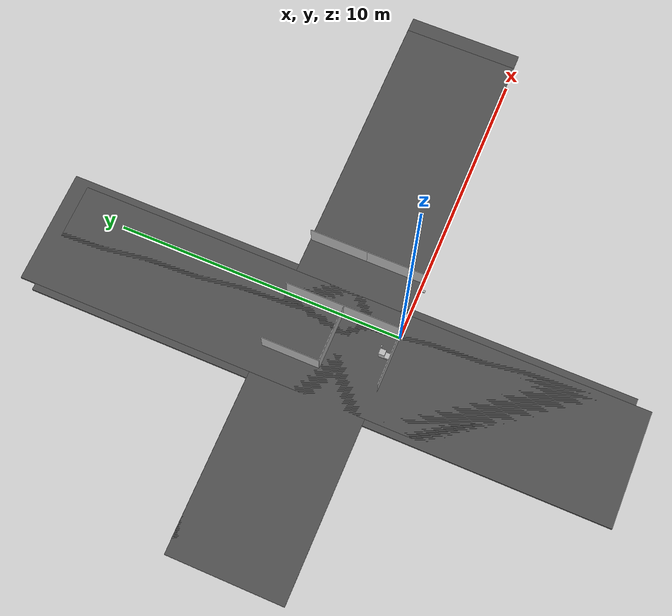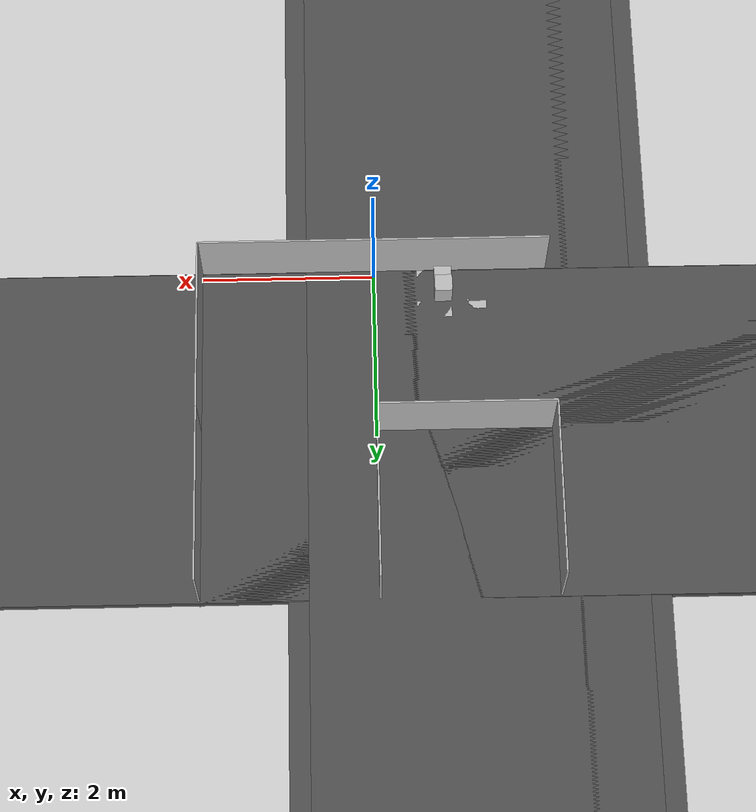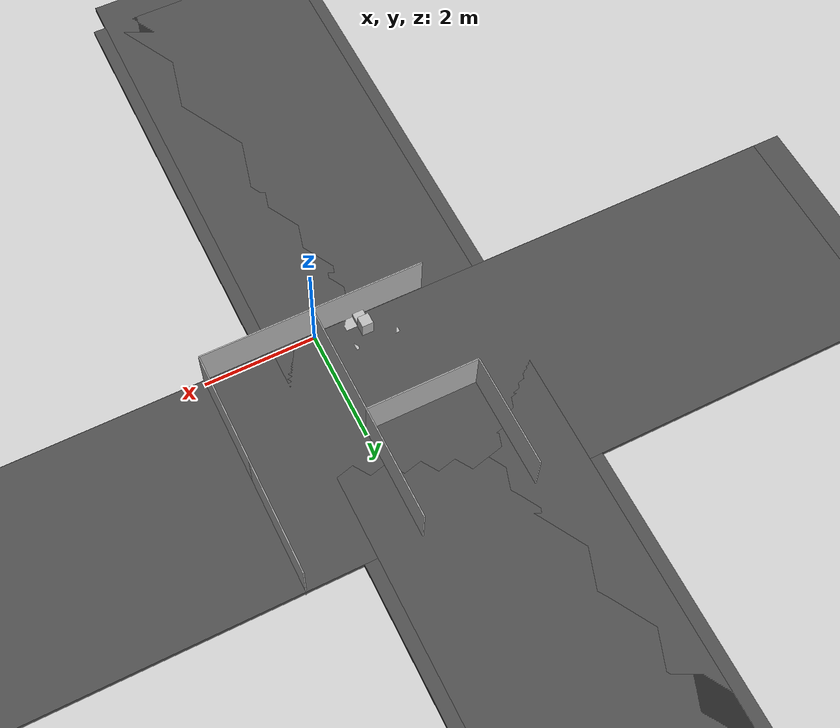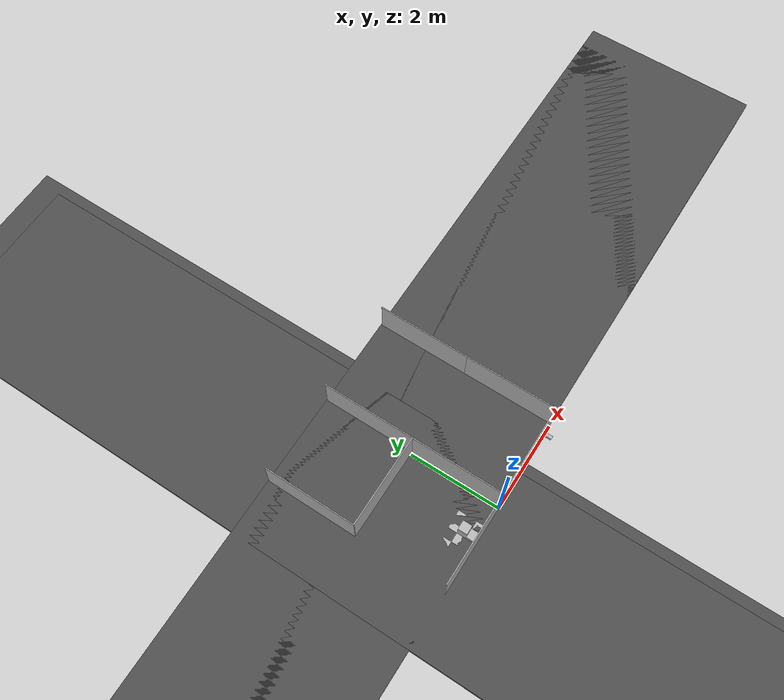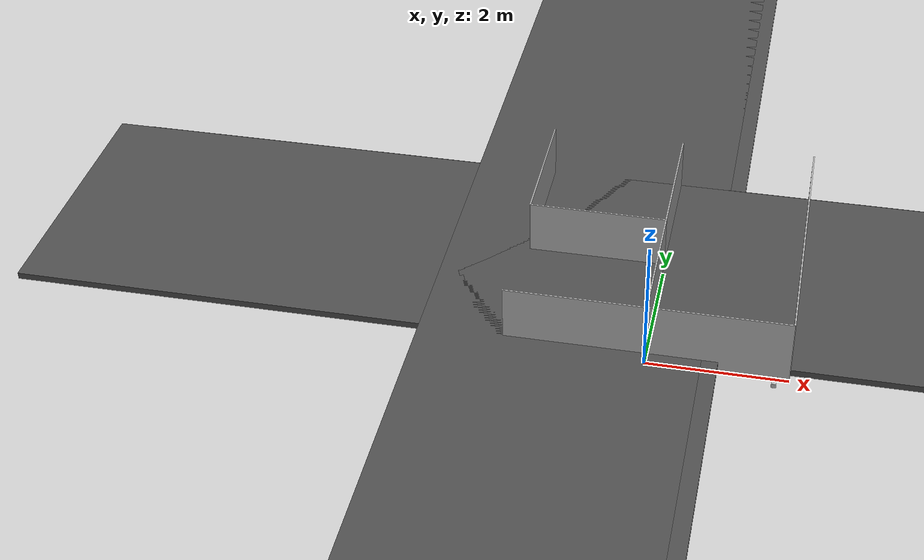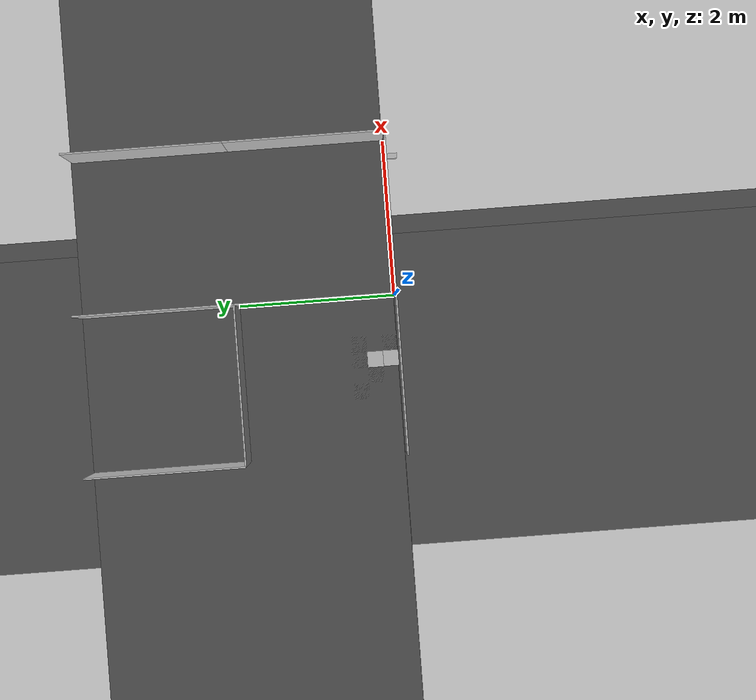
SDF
<sdf version="1.4">
  <!--Generated by blend2world.py-->
  <world name="arena_8walls_blocks_ramps">
    <scene>
      <ambient>0.5 0.5 0.5 1</ambient>
      <background>0.5 0.5 0.5 1</background>
      <shadows>false</shadows>
    </scene>
    <physics type="ode">
      <gravity>0 0 -9.81</gravity>
      <ode>
        <solver>
          <type>quick</type>
          <iters>1000</iters>
          <sor>1.3</sor>
        </solver>
        <constraints>
          <cfm>0.0</cfm>
          <erp>0.2</erp>
          <contact_max_correcting_vel>100.0</contact_max_correcting_vel>
          <contact_surface_layer>0.001</contact_surface_layer>
        </constraints>
      </ode>
      <real_time_update_rate>120</real_time_update_rate>
      <real_time_factor>1</real_time_factor>
      <max_step_size>0.008333</max_step_size>
    </physics>
    <light name="directional_light_1" type="directional">
      <cast_shadows>false</cast_shadows>
      <pose>0 0 30 0.1 0.1 0</pose>
      <diffuse>1.0 1.0 1.0 1</diffuse>
      <specular>.1 .1 .1 1</specular>
      <attenuation>
        <range>300</range>
      </attenuation>
      <direction>0.1 0.1 -1</direction>
    </light>
    <include>
      <uri>model://ground_plane</uri>
    </include>
    <light name="directional_light.-10.0_-12.0" type="sun">
      <pose>-10.0 -12.0 8  0 0 0</pose>
      <cast_shadows>1</cast_shadows>
      <diffuse>0.5 0.5 0.5 1</diffuse>
      <specular>0.1 0.1 0.1 1</specular>
      <attenuation>
        <range>20</range>
        <constant>0.5</constant>
        <linear>0.01</linear>
        <quadratic>0.00</quadratic>
      </attenuation>
      <direction>0.1 0.1 -1.0</direction>
    </light>
    <light name="directional_light.-10.0_0.0" type="sun">
      <pose>-10.0 0.0 8  0 0 0</pose>
      <cast_shadows>1</cast_shadows>
      <diffuse>0.5 0.5 0.5 1</diffuse>
      <specular>0.1 0.1 0.1 1</specular>
      <attenuation>
        <range>20</range>
        <constant>0.5</constant>
        <linear>0.01</linear>
        <quadratic>0.00</quadratic>
      </attenuation>
      <direction>0.1 0.1 -1.0</direction>
    </light>
    <light name="directional_light.-10.0_12.0" type="sun">
      <pose>-10.0 12.0 8  0 0 0</pose>
      <cast_shadows>1</cast_shadows>
      <diffuse>0.5 0.5 0.5 1</diffuse>
      <specular>0.1 0.1 0.1 1</specular>
      <attenuation>
        <range>20</range>
        <constant>0.5</constant>
        <linear>0.01</linear>
        <quadratic>0.00</quadratic>
      </attenuation>
      <direction>0.1 0.1 -1.0</direction>
    </light>
    <light name="directional_light.0.0_-12.0" type="sun">
      <pose>0.0 -12.0 8  0 0 0</pose>
      <cast_shadows>1</cast_shadows>
      <diffuse>0.5 0.5 0.5 1</diffuse>
      <specular>0.1 0.1 0.1 1</specular>
      <attenuation>
        <range>20</range>
        <constant>0.5</constant>
        <linear>0.01</linear>
        <quadratic>0.00</quadratic>
      </attenuation>
      <direction>0.1 0.1 -1.0</direction>
    </light>
    <light name="directional_light.0.0_0.0" type="sun">
      <pose>0.0 0.0 8  0 0 0</pose>
      <cast_shadows>1</cast_shadows>
      <diffuse>0.5 0.5 0.5 1</diffuse>
      <specular>0.1 0.1 0.1 1</specular>
      <attenuation>
        <range>20</range>
        <constant>0.5</constant>
        <linear>0.01</linear>
        <quadratic>0.00</quadratic>
      </attenuation>
      <direction>0.1 0.1 -1.0</direction>
    </light>
    <light name="directional_light.0.0_12.0" type="sun">
      <pose>0.0 12.0 8  0 0 0</pose>
      <cast_shadows>1</cast_shadows>
      <diffuse>0.5 0.5 0.5 1</diffuse>
      <specular>0.1 0.1 0.1 1</specular>
      <attenuation>
        <range>20</range>
        <constant>0.5</constant>
        <linear>0.01</linear>
        <quadratic>0.00</quadratic>
      </attenuation>
      <direction>0.1 0.1 -1.0</direction>
    </light>
    <light name="directional_light.10.0_-12.0" type="sun">
      <pose>10.0 -12.0 8  0 0 0</pose>
      <cast_shadows>1</cast_shadows>
      <diffuse>0.5 0.5 0.5 1</diffuse>
      <specular>0.1 0.1 0.1 1</specular>
      <attenuation>
        <range>20</range>
        <constant>0.5</constant>
        <linear>0.01</linear>
        <quadratic>0.00</quadratic>
      </attenuation>
      <direction>0.1 0.1 -1.0</direction>
    </light>
    <light name="directional_light.10.0_0.0" type="sun">
      <pose>10.0 0.0 8  0 0 0</pose>
      <cast_shadows>1</cast_shadows>
      <diffuse>0.5 0.5 0.5 1</diffuse>
      <specular>0.1 0.1 0.1 1</specular>
      <attenuation>
        <range>20</range>
        <constant>0.5</constant>
        <linear>0.01</linear>
        <quadratic>0.00</quadratic>
      </attenuation>
      <direction>0.1 0.1 -1.0</direction>
    </light>
    <light name="directional_light.10.0_12.0" type="sun">
      <pose>10.0 12.0 8  0 0 0</pose>
      <cast_shadows>1</cast_shadows>
      <diffuse>0.5 0.5 0.5 1</diffuse>
      <specular>0.1 0.1 0.1 1</specular>
      <attenuation>
        <range>20</range>
        <constant>0.5</constant>
        <linear>0.01</linear>
        <quadratic>0.00</quadratic>
      </attenuation>
      <direction>0.1 0.1 -1.0</direction>
    </light>
    <include>
      <name>cube_20x20</name>
      <pose>-0.800000011920929 0.5099999904632568 0.10000000149011612  0.0 -0.0 3.141592502593994</pose>
      <uri>model://cube_20x20</uri>
    </include>
    <include>
      <name>cube_20x20.001</name>
      <pose>-1.0 0.3100000023841858 0.10000000149011612  0.0 -0.0 3.141592502593994</pose>
      <uri>model://cube_20x20</uri>
    </include>
    <include>
      <name>cube_20x20.002</name>
      <pose>-1.2000000476837158 0.5099999904632568 0.10000000149011612  0.0 -0.0 3.141592502593994</pose>
      <uri>model://cube_20x20</uri>
    </include>
    <include>
      <name>cube_20x20.003</name>
      <pose>-0.6000000238418579 0.5099999904632568 0.10000000149011612  0.0 -0.0 3.141592502593994</pose>
      <uri>model://cube_20x20</uri>
    </include>
    <include>
      <name>cube_20x20.004</name>
      <pose>-0.6000000238418579 0.10999999940395355 0.10000000149011612  0.0 -0.0 3.141592502593994</pose>
      <uri>model://cube_20x20</uri>
    </include>
    <include>
      <name>cube_20x30</name>
      <pose>-0.800000011920929 0.10999999940395355 0.15000000596046448  0.0 -0.0 3.141592502593994</pose>
      <uri>model://cube_20x30</uri>
    </include>
    <include>
      <name>cube_20x50</name>
      <pose>-0.800000011920929 0.3100000023841858 0.25  0.0 -0.0 3.141592502593994</pose>
      <uri>model://cube_20x50</uri>
    </include>
    <include>
      <name>ramp</name>
      <pose>1.2565653324127197 2.0179603099823 0.15000000596046448  0.0 0.0 0.0</pose>
      <uri>model://ramp</uri>
    </include>
    <include>
      <name>ramp.001</name>
      <pose>0.7436184883117676 2.0129599571228027 0.15000000596046448  0.0 -0.0 3.141592502593994</pose>
      <uri>model://ramp</uri>
    </include>
    <include>
      <name>ramp.002</name>
      <pose>-1.2133511304855347 1.7248939275741577 0.15000000596046448  0.0 -0.0 4.71238899230957</pose>
      <uri>model://ramp</uri>
    </include>
    <include>
      <name>ramp.004</name>
      <pose>-0.9832800030708313 2.2666399478912354 0.15000000596046448  0.0 -0.0 7.853981971740723</pose>
      <uri>model://ramp</uri>
    </include>
    <include>
      <name>wall_2x1</name>
      <pose>-1.0 0.0 0.5130000114440918  0.0 0.0 0.0</pose>
      <uri>model://wall_2x1</uri>
    </include>
    <include>
      <name>wall_2x1.001</name>
      <pose>1.0 0.0 0.5130000114440918  0.0 0.0 0.0</pose>
      <uri>model://wall_2x1</uri>
    </include>
    <include>
      <name>wall_2x1.002</name>
      <pose>0.0 1.0 0.5130000114440918  0.0 -0.0 1.570796251296997</pose>
      <uri>model://wall_2x1</uri>
    </include>
    <include>
      <name>wall_2x1.003</name>
      <pose>0.0 3.0 0.5130000114440918  0.0 -0.0 1.570796251296997</pose>
      <uri>model://wall_2x1</uri>
    </include>
    <include>
      <name>wall_2x1.004</name>
      <pose>-2.0 3.0 0.5130000114440918  0.0 -0.0 1.570796251296997</pose>
      <uri>model://wall_2x1</uri>
    </include>
    <include>
      <name>wall_2x1.005</name>
      <pose>2.0 1.0 0.5130000114440918  0.0 -0.0 1.570796251296997</pose>
      <uri>model://wall_2x1</uri>
    </include>
    <include>
      <name>wall_2x1.006</name>
      <pose>2.0 3.0 0.5130000114440918  0.0 -0.0 1.570796251296997</pose>
      <uri>model://wall_2x1</uri>
    </include>
    <include>
      <name>wall_2x1.007</name>
      <pose>-1.0 2.0 0.5130000114440918  0.0 0.0 0.0</pose>
      <uri>model://wall_2x1</uri>
    </include>
    <include>
      <name>wall_stand</name>
      <pose>0.0 0.19949999451637268 0.03449999913573265  0.0 0.0 0.0</pose>
      <uri>model://wall_stand</uri>
    </include>
    <include>
      <name>wall_stand.001</name>
      <pose>0.19949999451637268 0.0 0.03449999913573265  0.0 -0.0 1.570796251296997</pose>
      <uri>model://wall_stand</uri>
    </include>
    <include>
      <name>wall_stand.002</name>
      <pose>-0.19949999451637268 0.0 0.03449999913573265  0.0 -0.0 1.570796251296997</pose>
      <uri>model://wall_stand</uri>
    </include>
    <include>
      <name>wall_stand.003</name>
      <pose>1.8005000352859497 0.0 0.03449999913573265  0.0 -0.0 1.570796251296997</pose>
      <uri>model://wall_stand</uri>
    </include>
    <include>
      <name>wall_stand.004</name>
      <pose>-1.8005000352859497 0.0 0.03449999913573265  0.0 -0.0 1.570796251296997</pose>
      <uri>model://wall_stand</uri>
    </include>
    <include>
      <name>wall_stand.005</name>
      <pose>0.0 2.19950008392334 0.03449999913573265  0.0 0.0 0.0</pose>
      <uri>model://wall_stand</uri>
    </include>
    <include>
      <name>wall_stand.006</name>
      <pose>2.0 2.19950008392334 0.03449999913573265  0.0 0.0 0.0</pose>
      <uri>model://wall_stand</uri>
    </include>
    <include>
      <name>wall_stand.007</name>
      <pose>-2.0 2.19950008392334 0.03449999913573265  0.0 0.0 0.0</pose>
      <uri>model://wall_stand</uri>
    </include>
    <include>
      <name>wall_stand.008</name>
      <pose>-0.19949999451637268 2.0 0.03449999913573265  0.0 -0.0 1.570796251296997</pose>
      <uri>model://wall_stand</uri>
    </include>
    <include>
      <name>wall_stand.009</name>
      <pose>0.0 1.8005001544952393 0.03449999913573265  0.0 0.0 0.0</pose>
      <uri>model://wall_stand</uri>
    </include>
    <include>
      <name>wall_stand.010</name>
      <pose>2.0 3.8005001544952393 0.03449999913573265  0.0 0.0 0.0</pose>
      <uri>model://wall_stand</uri>
    </include>
    <include>
      <name>wall_stand.011</name>
      <pose>-2.0 3.8005001544952393 0.03449999913573265  0.0 0.0 0.0</pose>
      <uri>model://wall_stand</uri>
    </include>
    <include>
      <name>wall_stand.012</name>
      <pose>2.0 1.8005001544952393 0.03449999913573265  0.0 0.0 0.0</pose>
      <uri>model://wall_stand</uri>
    </include>
    <include>
      <name>wall_stand.014</name>
      <pose>2.0 0.19950008392333984 0.03449999913573265  0.0 0.0 0.0</pose>
      <uri>model://wall_stand</uri>
    </include>
    <include>
      <name>wall_stand.015</name>
      <pose>-1.8005000352859497 2.0 0.03449999913573265  0.0 -0.0 1.570796251296997</pose>
      <uri>model://wall_stand</uri>
    </include>
    <include>
      <name>wall_stand.016</name>
      <pose>0.0 3.8005001544952393 0.03449999913573265  0.0 0.0 0.0</pose>
      <uri>model://wall_stand</uri>
    </include>
  </world>
</sdf>

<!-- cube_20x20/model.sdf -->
<sdf version="1.4">
  <!--Generated by blend2world.py-->
    <model name="cube_20x20">
      <pose>0.0 0.0 0.0  0.0 0.0 0.0</pose>
      <static>true</static>
      <link name="body">
        <collision name="collision">
          <geometry>
            <mesh>
              <uri>model://cube_20x20/meshes/cube_20x20.dae</uri>
              <scale>1 1 1</scale>
            </mesh>
          </geometry>
        </collision>
        <visual name="visual">
          <geometry>
            <mesh>
              <uri>model://cube_20x20/meshes/cube_20x20.dae</uri>
              <scale>1 1 1</scale>
            </mesh>
          </geometry>
	  <material>
            <script>
              <uri>model://cube_20x20/textures/chipboard.jpg</uri>
            </script>
          </material>
        </visual>
      </link>
    </model>
</sdf>

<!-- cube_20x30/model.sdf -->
<sdf version="1.4">
  <!--Generated by blend2world.py-->
    <model name="cube_20x30">
      <pose>0.0 0.0 0.0  0.0 0.0 0.0</pose>
      <static>true</static>
      <link name="body">
        <collision name="collision">
          <geometry>
            <mesh>
              <uri>model://cube_20x30/meshes/cube_20x30.dae</uri>
              <scale>1 1 1</scale>
            </mesh>
          </geometry>
        </collision>
        <visual name="visual">
          <geometry>
            <mesh>
              <uri>model://cube_20x30/meshes/cube_20x30.dae</uri>
              <scale>1 1 1</scale>
            </mesh>
          </geometry>
	  <material>
            <script>
              <uri>model://cube_20x30/textures/chipboard.jpg</uri>
            </script>
          </material>
        </visual>
      </link>
    </model>
</sdf>

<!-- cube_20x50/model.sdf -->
<sdf version="1.4">
  <!--Generated by blend2world.py-->
    <model name="cube_20x50">
      <pose>0.0 0.0 0.0  0.0 0.0 0.0</pose>
      <static>true</static>
      <link name="body">
        <collision name="collision">
          <geometry>
            <mesh>
              <uri>model://cube_20x50/meshes/cube_20x50.dae</uri>
              <scale>1 1 1</scale>
            </mesh>
          </geometry>
        </collision>
        <visual name="visual">
          <geometry>
            <mesh>
              <uri>model://cube_20x50/meshes/cube_20x50.dae</uri>
              <scale>1 1 1</scale>
            </mesh>
          </geometry>
	  <material>
            <script>
              <uri>model://cube_20x50/textures/chipboard.jpg</uri>
            </script>
          </material>
        </visual>
      </link>
    </model>
</sdf>

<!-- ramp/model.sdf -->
<sdf version="1.4">
  <model name="ramp">
    <static>true</static>
    <pose>0 0 0.2 0 0.15 0</pose>
    <link name="link">
      <collision name="collision">
        <geometry>
          <box>
            <size>20 4 .1</size>
          </box>
        </geometry>
      </collision>
      <visual name="visual">
        <geometry>
          <box>
            <size>20 4 .1</size>
          </box>
        </geometry>
        <material>
          <script>
            <uri>model://asphalt_plane/materials/scripts/asphalt.material</uri>
            <name>vrc/asphalt</name>
          </script>
        </material>
      </visual>
    </link>
  </model>
</sdf>

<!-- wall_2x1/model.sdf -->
<sdf version="1.4">
  <!--Generated by blend2world.py-->
    <model name="wall_2x1">
      <pose>0.0 0.0 0.0  0.0 0.0 0.0</pose>
      <static>true</static>
      <link name="body">
        <collision name="collision">
          <geometry>
            <mesh>
              <uri>model://wall_2x1/meshes/wall_2x1.dae</uri>
              <scale>1 1 1</scale>
            </mesh>
          </geometry>
        </collision>
        <visual name="visual">
          <geometry>
            <mesh>
              <uri>model://wall_2x1/meshes/wall_2x1.dae</uri>
              <scale>1 1 1</scale>
            </mesh>
          </geometry>
	  <material>
            <script>
              <uri>model://wall_2x1/textures/chipboard.jpg</uri>
            </script>
          </material>
        </visual>
      </link>
    </model>
</sdf>

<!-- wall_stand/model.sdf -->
<sdf version="1.4">
  <!--Generated by blend2world.py-->
    <model name="wall_stand">
      <pose>0.0 0.0 0.0  0.0 0.0 0.0</pose>
      <static>true</static>
      <link name="body">
        <collision name="collision">
          <geometry>
            <mesh>
              <uri>model://wall_stand/meshes/wall_stand.dae</uri>
              <scale>1 1 1</scale>
            </mesh>
          </geometry>
        </collision>
        <visual name="visual">
          <geometry>
            <mesh>
              <uri>model://wall_stand/meshes/wall_stand.dae</uri>
              <scale>1 1 1</scale>
            </mesh>
          </geometry>
	  <material>
            <script>
              <uri>model://wall_stand/textures/ahorn_gr.jpg</uri>
            </script>
          </material>
        </visual>
      </link>
    </model>
</sdf>
